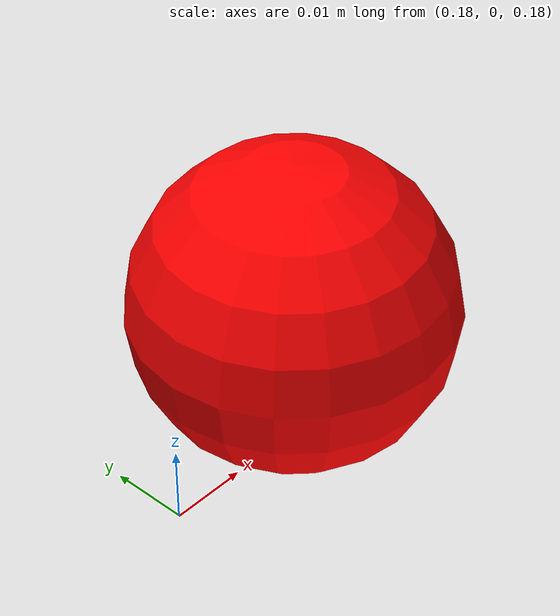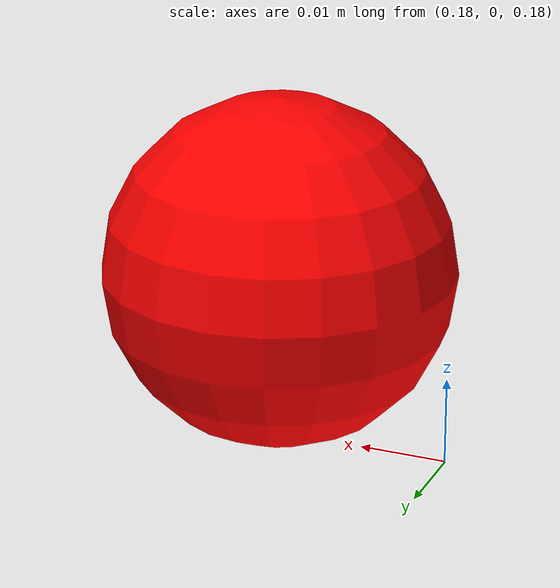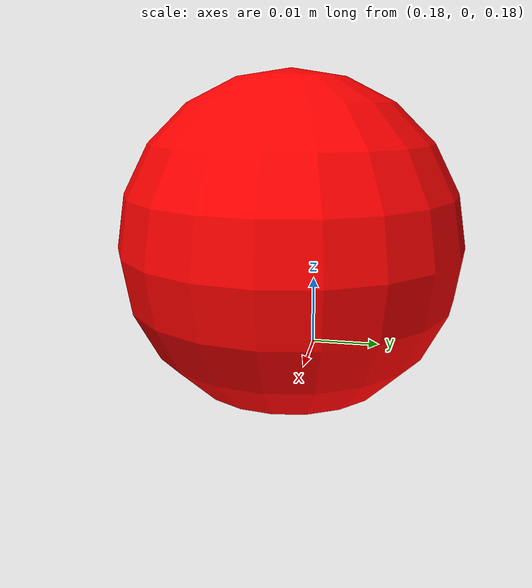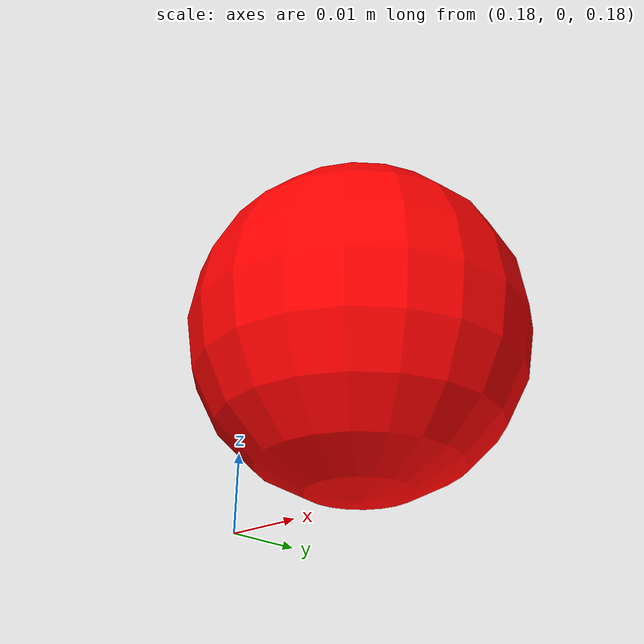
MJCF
<!-- Test 4 (held-out): dark floor + warm light + side direction (triple combination) -->
<mujoco model="rx150_test_4">
  <compiler angle="radian"/>
  <option timestep="0.002"/>

  <visual>
    <headlight diffuse="0.6 0.6 0.6" ambient="0.3 0.3 0.3" specular="0 0 0"/>
    <rgba haze="0.15 0.25 0.35 1"/>
  </visual>

  <asset>
    <texture type="skybox" builtin="gradient" rgb1="0.3 0.5 0.7" rgb2="0.0 0.0 0.0" width="512" height="512"/>
    <texture name="floor_tex" type="2d" builtin="checker" rgb1="0.2 0.2 0.2" rgb2="0.1 0.1 0.1" width="512" height="512"/>
    <material name="floor_mat" texture="floor_tex" texrepeat="4 4" reflectance="0.05"/>
  </asset>

  <worldbody>
    <light pos="2.0 0.0 1.0" dir="-1 0 -0.5" directional="true" diffuse="0.9 0.7 0.3" specular="0.1 0.1 0.0"/>
    <geom name="floor" type="plane" size="2 2 0.05" material="floor_mat"/>
    <camera name="front_cam" pos="0.5 -0.5 0.5" xyaxes="1 0 0 0 1 1"/>
    <include file="rx150.xml"/>
    <body name="target" pos="0.2 0.0 0.2">
      <geom type="sphere" size="0.02" rgba="1 0 0 1" contype="0" conaffinity="0"/>
      <site name="target_site" pos="0 0 0" size="0.001"/>
    </body>
  </worldbody>
</mujoco>

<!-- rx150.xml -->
<mujoco model="rx150">

  <asset>
    <mesh name="rx150_1_base" content_type="model/stl" file="rx150_1_base.stl" scale="0.001 0.001 0.001"/>
    <mesh name="rx150_2_shoulder" content_type="model/stl" file="rx150_2_shoulder.stl" scale="0.001 0.001 0.001"/>
    <mesh name="rx150_3_upper_arm" content_type="model/stl" file="rx150_3_upper_arm.stl" scale="0.001 0.001 0.001"/>
    <mesh name="rx150_4_forearm" content_type="model/stl" file="rx150_4_forearm.stl" scale="0.001 0.001 0.001"/>
    <mesh name="rx150_5_wrist" content_type="model/stl" file="rx150_5_wrist.stl" scale="0.001 0.001 0.001"/>
    <mesh name="rx150_6_gripper" content_type="model/stl" file="rx150_6_gripper.stl" scale="0.001 0.001 0.001"/>
    <mesh name="rx150_7_gripper_prop" content_type="model/stl" file="rx150_7_gripper_prop.stl" scale="0.001 0.001 0.001"/>
    <mesh name="rx150_8_gripper_bar" content_type="model/stl" file="rx150_8_gripper_bar.stl" scale="0.001 0.001 0.001"/>
    <mesh name="rx150_9_gripper_finger" content_type="model/stl" file="rx150_9_gripper_finger.stl" scale="0.001 0.001 0.001"/>
  </asset>

  <worldbody>
    <geom quat="0.707107 0 0 -0.707107" type="mesh" mesh="rx150_1_base"/>
    <body name="rx150/shoulder_link" pos="0 0 0.06566">
      <inertial pos="-0.000127549 -0.000184747 0.0079473" quat="8.51361e-05 0.712597 0.0017378 0.701571" mass="0.257774" diaginertia="0.000289818 0.0002226 0.000219483"/>
      <joint name="waist" pos="0 0 0" axis="0 0 1" range="-3.14158 3.14158" actuatorfrcrange="-8 8" frictionloss="0.1"/>
      <geom pos="0 0 0.0015" quat="0.707107 0 0 -0.707107" type="mesh" mesh="rx150_2_shoulder"/>
      <body name="rx150/upper_arm_link" pos="0 0 0.03891">
        <inertial pos="0.0125618 -0.000124017 0.106762" quat="0.993805 0.110681 -2.5077e-05 -0.0100777" mass="0.283759" diaginertia="0.000860916 0.00082992 0.000122563"/>
        <joint name="shoulder" pos="0 0 0" axis="0 1 0" range="-1.85005 1.74533" actuatorfrcrange="-18 18" frictionloss="0.1"/>
        <geom quat="0.707107 0 0 0.707107" type="mesh" mesh="rx150_3_upper_arm"/>
        <body name="rx150/forearm_link" pos="0.05 0 0.15">
          <inertial pos="0.08509 0.000404824 0" quat="0.500832 0.499167 -0.500832 0.499167" mass="0.23568" diaginertia="0.0004895 0.000469305 6.24155e-05"/>
          <joint name="elbow" pos="0 0 0" axis="0 1 0" range="-1.78024 1.65806" actuatorfrcrange="-13 13" frictionloss="0.1"/>
          <geom pos="0 0 0" quat="0.707107 0 0 0.707107" type="mesh" mesh="rx150_4_forearm"/>
          <body name="rx150/wrist_link" pos="0.15 0 0">
            <inertial pos="0.04236 -1.0411e-05 0.010577" quat="0.608721 0.363497 -0.359175 0.606895" mass="0.084957" diaginertia="3.29057e-05 3.082e-05 2.68343e-05"/>
            <joint name="wrist_angle" pos="0 0 0" axis="0 1 0" range="-1.74533 2.14675" actuatorfrcrange="-5 5" frictionloss="0.1"/>
            <geom quat="0.707107 0 0 0.707107" type="mesh" mesh="rx150_5_wrist"/>
            <body name="rx150/gripper_link" pos="0.065 0 0">
              <inertial pos="0.0191705 -0.00915266 0.018826" quat="0.717793 0.0865302 -0.464102 0.511757" mass="0.110084" diaginertia="0.00309262 0.00307833 0.0030495"/>
              <joint name="wrist_rotate" pos="0 0 0" axis="1 0 0" range="-3.14158 3.14158" actuatorfrcrange="-1 1" frictionloss="0.1"/>
              <geom pos="-0.02 0 0" quat="0.707107 0 0 0.707107" type="mesh" mesh="rx150_6_gripper"/>
              <geom pos="-0.02 0 0" quat="0.707107 0 0 0.707107" type="mesh" mesh="rx150_8_gripper_bar"/>
              <body name="rx150/gripper_prop_link" pos="0.0485 0 0">
                <inertial pos="0.000846 -1.933e-06 4.2e-05" quat="0.654786 -0.266277 -0.265707 0.655555" mass="0.00434" diaginertia="1.1156e-06 9.02926e-07 2.63673e-07"/>
                <joint name="gripper" pos="0 0 0" axis="1 0 0" actuatorfrcrange="-1 1" frictionloss="0.1"/>
                <geom pos="-0.0685 0 0" quat="0.707107 0 0 0.707107" type="mesh" mesh="rx150_7_gripper_prop"/>
              </body>
              <!-- End-effector site at gripper tip, mirroring wxai ee_site pattern -->
              <site name="ee_site" pos="0.1 0 0" size="0.001"/>
              <body name="rx150/left_finger_link" pos="0.066 0 0">
                <inertial pos="0.013816 0 0" quat="0.705384 0.705384 -0.0493271 -0.0493271" mass="0.016246" diaginertia="4.79509e-06 3.7467e-06 1.48651e-06"/>
                <joint name="left_finger" pos="0 0 0" axis="0 1 0" type="slide" range="0.015 0.037" actuatorfrcrange="-5 5" frictionloss="0.1"/>
                <geom pos="0 0.005 0" quat="0 0 0 -1" type="mesh" mesh="rx150_9_gripper_finger"/>
              </body>
              <body name="rx150/right_finger_link" pos="0.066 0 0">
                <inertial pos="0.013816 0 0" quat="0.705384 0.705384 0.0493271 0.0493271" mass="0.016246" diaginertia="4.79509e-06 3.7467e-06 1.48651e-06"/>
                <joint name="right_finger" pos="0 0 0" axis="0 1 0" type="slide" range="-0.037 -0.015" actuatorfrcrange="-5 5" frictionloss="0.1"/>
                <geom pos="0 -0.005 0" quat="0 0 1 0" type="mesh" mesh="rx150_9_gripper_finger"/>
              </body>
            </body>
          </body>
        </body>
      </body>
    </body>
  </worldbody>

  <actuator>
    <!-- kp/kv scaled from wxai values proportionally to RX150 actuatorfrcrange -->
    <position name="waist_act"        joint="waist"        kp="60"  kv="5"  forcerange="-8 8"   ctrlrange="-3.14158 3.14158"/>
    <position name="shoulder_act"     joint="shoulder"     kp="133" kv="8"  forcerange="-18 18" ctrlrange="-1.85005 1.74533"/>
    <position name="elbow_act"        joint="elbow"        kp="96"  kv="6"  forcerange="-13 13" ctrlrange="-1.78024 1.65806"/>
    <position name="wrist_angle_act"  joint="wrist_angle"  kp="71"  kv="4"  forcerange="-5 5"   ctrlrange="-1.74533 2.14675"/>
    <position name="wrist_rotate_act" joint="wrist_rotate" kp="7"   kv="2"  forcerange="-1 1"   ctrlrange="-3.14158 3.14158"/>
    <position name="left_finger_act"  joint="left_finger"  kp="12"  kv="2"  forcerange="-5 5"   ctrlrange="0.015 0.037"/>
    <position name="right_finger_act" joint="right_finger" kp="12"  kv="2"  forcerange="-5 5"   ctrlrange="-0.037 -0.015"/>
  </actuator>

  <keyframe>
    <key name="home" qpos="0 0 0 0 0 0 0 0" ctrl="0 0 0 0 0 0.015 -0.015"/>
  </keyframe>

</mujoco>
